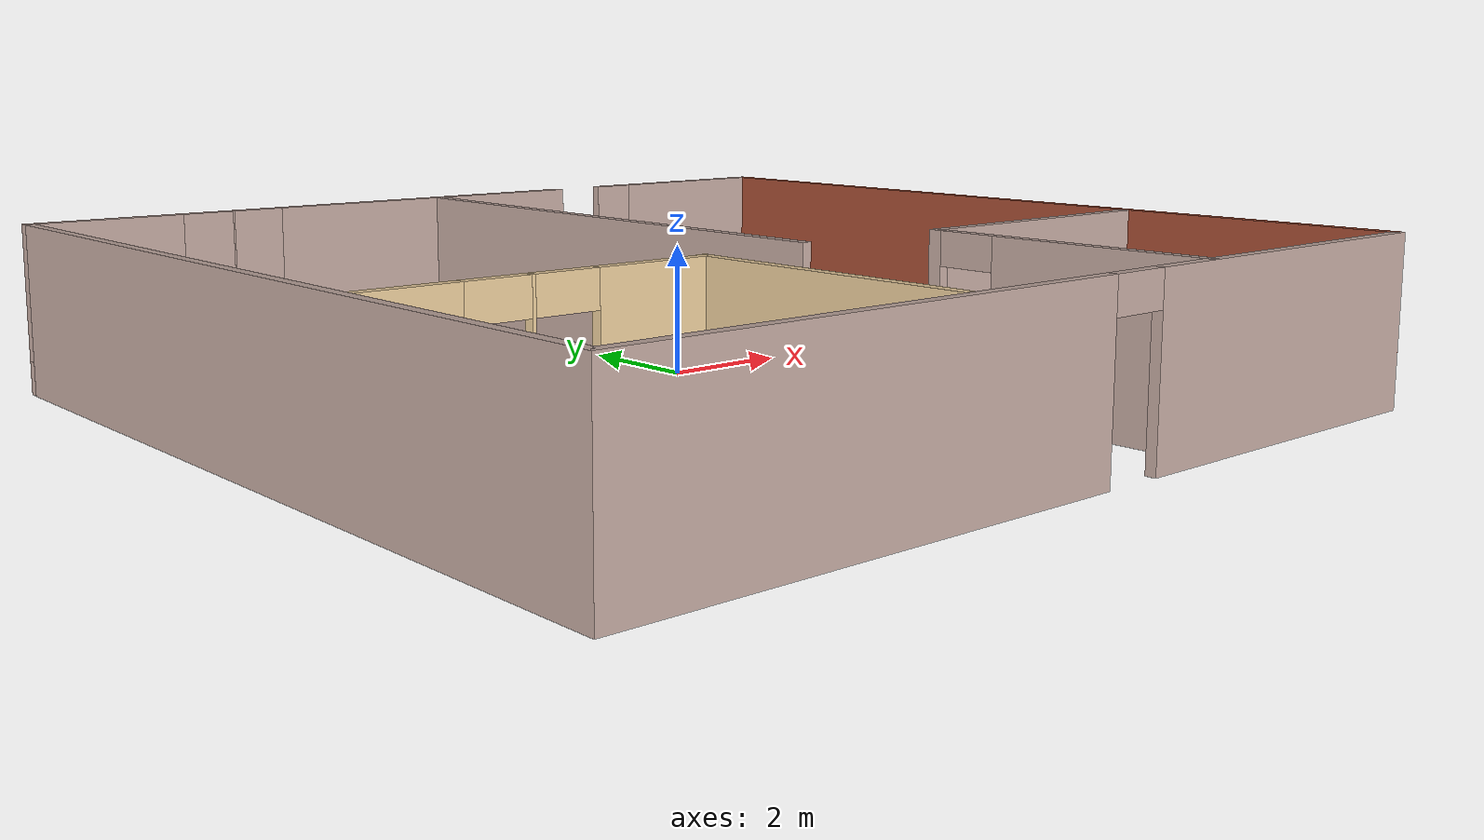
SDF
<?xml version='1.0'?>
<sdf version='1.6'>
  <model name='Apartment'>
    <pose frame=''>-1.18921 -1.85739 0 0 -0 0</pose>
    <link name='Wall_0'>
      <collision name='Wall_0_Collision'>
        <geometry>
          <box>
            <size>13.5 0.15 2.5</size>
          </box>
        </geometry>
        <pose frame=''>0 0 1.25 0 -0 0</pose>
      </collision>
      <visual name='Wall_0_Visual'>
        <pose frame=''>0 0 1.25 0 -0 0</pose>
        <geometry>
          <box>
            <size>13.5 0.15 2.5</size>
          </box>
        </geometry>
        <material>
          <script>
            <uri>file://media/materials/scripts/gazebo.material</uri>
            <name>Gazebo/Grey</name>
          </script>
          <ambient>0.760784 0.662745 0.627451 1</ambient>
        </material>
      </visual>
      <pose frame=''>-6.925 0 0 0 0 -1.5708</pose>
    </link>
    <link name='Wall_1'>
      <pose frame=''>0 -6.675 0 0 -0 0</pose>
      <visual name='Wall_1_Visual_0'>
        <pose frame=''>-3.31784 0 1.25 0 -0 0</pose>
        <geometry>
          <box>
            <size>7.36433 0.15 2.5</size>
          </box>
        </geometry>
        <material>
          <script>
            <uri>file://media/materials/scripts/gazebo.material</uri>
            <name>Gazebo/Grey</name>
          </script>
          <ambient>0.760784 0.662745 0.627451 1</ambient>
        </material>
      </visual>
      <collision name='Wall_1_Collision_0'>
        <geometry>
          <box>
            <size>7.36433 0.15 2.5</size>
          </box>
        </geometry>
        <pose frame=''>-3.31784 0 1.25 0 -0 0</pose>
      </collision>
      <visual name='Wall_1_Visual_1'>
        <pose frame=''>4.13216 0 1.25 0 -0 0</pose>
        <geometry>
          <box>
            <size>5.73567 0.15 2.5</size>
          </box>
        </geometry>
        <material>
          <script>
            <uri>file://media/materials/scripts/gazebo.material</uri>
            <name>Gazebo/Grey</name>
          </script>
          <ambient>0.760784 0.662745 0.627451 1</ambient>
        </material>
      </visual>
      <collision name='Wall_1_Collision_1'>
        <geometry>
          <box>
            <size>5.73567 0.15 2.5</size>
          </box>
        </geometry>
        <pose frame=''>4.13216 0 1.25 0 -0 0</pose>
      </collision>
      <visual name='Wall_1_Visual_2'>
        <pose frame=''>0.814328 0 2.25 0 -0 0</pose>
        <geometry>
          <box>
            <size>0.9 0.15 0.5</size>
          </box>
        </geometry>
        <material>
          <script>
            <uri>file://media/materials/scripts/gazebo.material</uri>
            <name>Gazebo/Grey</name>
          </script>
          <ambient>0.760784 0.662745 0.627451 1</ambient>
        </material>
      </visual>
      <collision name='Wall_1_Collision_2'>
        <geometry>
          <box>
            <size>0.9 0.15 0.5</size>
          </box>
        </geometry>
        <pose frame=''>0.814328 0 2.25 0 -0 0</pose>
      </collision>
    </link>
    <link name='Wall_10'>
      <pose frame=''>-4.3729 -2.44089 0 0 -0 0</pose>
      <visual name='Wall_10_Visual_0'>
        <pose frame=''>-1.80534 0 1.25 0 -0 0</pose>
        <geometry>
          <box>
            <size>1.33849 0.15 2.5</size>
          </box>
        </geometry>
        <material>
          <script>
            <uri>file://media/materials/scripts/gazebo.material</uri>
            <name>Gazebo/Grey</name>
          </script>
          <ambient>0.921569 0.807843 0.615686 1</ambient>
        </material>
      </visual>
      <collision name='Wall_10_Collision_0'>
        <geometry>
          <box>
            <size>1.33849 0.15 2.5</size>
          </box>
        </geometry>
        <pose frame=''>-1.80534 0 1.25 0 -0 0</pose>
      </collision>
      <visual name='Wall_10_Visual_1'>
        <pose frame=''>-0.211947 0 1.25 0 -0 0</pose>
        <geometry>
          <box>
            <size>0.048297 0.15 2.5</size>
          </box>
        </geometry>
        <material>
          <script>
            <uri>file://media/materials/scripts/gazebo.material</uri>
            <name>Gazebo/Grey</name>
          </script>
          <ambient>0.921569 0.807843 0.615686 1</ambient>
        </material>
      </visual>
      <collision name='Wall_10_Collision_1'>
        <geometry>
          <box>
            <size>0.048297 0.15 2.5</size>
          </box>
        </geometry>
        <pose frame=''>-0.211947 0 1.25 0 -0 0</pose>
      </collision>
      <visual name='Wall_10_Visual_2'>
        <pose frame=''>1.59339 0 1.25 0 -0 0</pose>
        <geometry>
          <box>
            <size>1.76239 0.15 2.5</size>
          </box>
        </geometry>
        <material>
          <script>
            <uri>file://media/materials/scripts/gazebo.material</uri>
            <name>Gazebo/Grey</name>
          </script>
          <ambient>0.921569 0.807843 0.615686 1</ambient>
        </material>
      </visual>
      <collision name='Wall_10_Collision_2'>
        <geometry>
          <box>
            <size>1.76239 0.15 2.5</size>
          </box>
        </geometry>
        <pose frame=''>1.59339 0 1.25 0 -0 0</pose>
      </collision>
      <visual name='Wall_10_Visual_3'>
        <pose frame=''>-0.686096 0 2.25 0 -0 0</pose>
        <geometry>
          <box>
            <size>0.9 0.15 0.5</size>
          </box>
        </geometry>
        <material>
          <script>
            <uri>file://media/materials/scripts/gazebo.material</uri>
            <name>Gazebo/Grey</name>
          </script>
          <ambient>0.921569 0.807843 0.615686 1</ambient>
        </material>
      </visual>
      <collision name='Wall_10_Collision_3'>
        <geometry>
          <box>
            <size>0.9 0.15 0.5</size>
          </box>
        </geometry>
        <pose frame=''>-0.686096 0 2.25 0 -0 0</pose>
      </collision>
      <visual name='Wall_10_Visual_4'>
        <pose frame=''>0.262201 0 2.25 0 -0 0</pose>
        <geometry>
          <box>
            <size>0.9 0.15 0.5</size>
          </box>
        </geometry>
        <material>
          <script>
            <uri>file://media/materials/scripts/gazebo.material</uri>
            <name>Gazebo/Grey</name>
          </script>
          <ambient>0.921569 0.807843 0.615686 1</ambient>
        </material>
      </visual>
      <collision name='Wall_10_Collision_4'>
        <geometry>
          <box>
            <size>0.9 0.15 0.5</size>
          </box>
        </geometry>
        <pose frame=''>0.262201 0 2.25 0 -0 0</pose>
      </collision>
    </link>
    <link name='Wall_11'>
      <collision name='Wall_11_Collision'>
        <geometry>
          <box>
            <size>4.25 0.15 2.5</size>
          </box>
        </geometry>
        <pose frame=''>0 0 1.25 0 -0 0</pose>
      </collision>
      <visual name='Wall_11_Visual'>
        <pose frame=''>0 0 1.25 0 -0 0</pose>
        <geometry>
          <box>
            <size>4.25 0.15 2.5</size>
          </box>
        </geometry>
        <material>
          <script>
            <uri>file://media/materials/scripts/gazebo.material</uri>
            <name>Gazebo/Grey</name>
          </script>
          <ambient>0.921569 0.807843 0.615686 1</ambient>
        </material>
      </visual>
      <pose frame=''>-1.97375 -4.4603 0 0 0 -1.5708</pose>
    </link>
    <link name='Wall_2'>
      <collision name='Wall_2_Collision'>
        <geometry>
          <box>
            <size>13.5 0.15 2.5</size>
          </box>
        </geometry>
        <pose frame=''>0 0 1.25 0 -0 0</pose>
      </collision>
      <visual name='Wall_2_Visual'>
        <pose frame=''>0 0 1.25 0 -0 0</pose>
        <geometry>
          <box>
            <size>13.5 0.15 2.5</size>
          </box>
        </geometry>
        <material>
          <script>
            <uri>file://media/materials/scripts/gazebo.material</uri>
            <name>Gazebo/Bricks</name>
          </script>
          <ambient>1 1 1 1</ambient>
        </material>
      </visual>
      <pose frame=''>6.925 0 0 0 -0 1.5708</pose>
    </link>
    <link name='Wall_3'>
      <pose frame=''>0 6.675 0 0 -0 3.14159</pose>
      <visual name='Wall_3_Visual_0'>
        <pose frame=''>-5.49902 0 1.25 0 -0 0</pose>
        <geometry>
          <box>
            <size>3.00196 0.15 2.5</size>
          </box>
        </geometry>
        <material>
          <script>
            <uri>file://media/materials/scripts/gazebo.material</uri>
            <name>Gazebo/Grey</name>
          </script>
          <ambient>0.760784 0.662745 0.627451 1</ambient>
        </material>
      </visual>
      <collision name='Wall_3_Collision_0'>
        <geometry>
          <box>
            <size>3.00196 0.15 2.5</size>
          </box>
        </geometry>
        <pose frame=''>-5.49902 0 1.25 0 -0 0</pose>
      </collision>
      <visual name='Wall_3_Visual_1'>
        <pose frame=''>1.50098 0 0.25 0 -0 0</pose>
        <geometry>
          <box>
            <size>10.998 0.15 0.5</size>
          </box>
        </geometry>
        <material>
          <script>
            <uri>file://media/materials/scripts/gazebo.material</uri>
            <name>Gazebo/Grey</name>
          </script>
          <ambient>0.760784 0.662745 0.627451 1</ambient>
        </material>
      </visual>
      <collision name='Wall_3_Collision_1'>
        <geometry>
          <box>
            <size>10.998 0.15 0.5</size>
          </box>
        </geometry>
        <pose frame=''>1.50098 0 0.25 0 -0 0</pose>
      </collision>
      <visual name='Wall_3_Visual_2'>
        <pose frame=''>0.25633 0 1.5 0 -0 0</pose>
        <geometry>
          <box>
            <size>5.50159 0.15 2</size>
          </box>
        </geometry>
        <material>
          <script>
            <uri>file://media/materials/scripts/gazebo.material</uri>
            <name>Gazebo/Grey</name>
          </script>
          <ambient>0.760784 0.662745 0.627451 1</ambient>
        </material>
      </visual>
      <collision name='Wall_3_Collision_2'>
        <geometry>
          <box>
            <size>5.50159 0.15 2</size>
          </box>
        </geometry>
        <pose frame=''>0.25633 0 1.5 0 -0 0</pose>
      </collision>
      <visual name='Wall_3_Visual_3'>
        <pose frame=''>3.82009 0 1.5 0 -0 0</pose>
        <geometry>
          <box>
            <size>0.025936 0.15 2</size>
          </box>
        </geometry>
        <material>
          <script>
            <uri>file://media/materials/scripts/gazebo.material</uri>
            <name>Gazebo/Grey</name>
          </script>
          <ambient>0.760784 0.662745 0.627451 1</ambient>
        </material>
      </visual>
      <collision name='Wall_3_Collision_3'>
        <geometry>
          <box>
            <size>0.025936 0.15 2</size>
          </box>
        </geometry>
        <pose frame=''>3.82009 0 1.5 0 -0 0</pose>
      </collision>
      <visual name='Wall_3_Visual_4'>
        <pose frame=''>5.81653 0 1.5 0 -0 0</pose>
        <geometry>
          <box>
            <size>2.36694 0.15 2</size>
          </box>
        </geometry>
        <material>
          <script>
            <uri>file://media/materials/scripts/gazebo.material</uri>
            <name>Gazebo/Grey</name>
          </script>
          <ambient>0.760784 0.662745 0.627451 1</ambient>
        </material>
      </visual>
      <collision name='Wall_3_Collision_4'>
        <geometry>
          <box>
            <size>2.36694 0.15 2</size>
          </box>
        </geometry>
        <pose frame=''>5.81653 0 1.5 0 -0 0</pose>
      </collision>
      <visual name='Wall_3_Visual_5'>
        <pose frame=''>-3.64625 0 1.9 0 -0 0</pose>
        <geometry>
          <box>
            <size>0.703575 0.15 1.2</size>
          </box>
        </geometry>
        <material>
          <script>
            <uri>file://media/materials/scripts/gazebo.material</uri>
            <name>Gazebo/Grey</name>
          </script>
          <ambient>0.760784 0.662745 0.627451 1</ambient>
        </material>
      </visual>
      <collision name='Wall_3_Collision_5'>
        <geometry>
          <box>
            <size>0.703575 0.15 1.2</size>
          </box>
        </geometry>
        <pose frame=''>-3.64625 0 1.9 0 -0 0</pose>
      </collision>
      <visual name='Wall_3_Visual_6'>
        <pose frame=''>3.40712 0 1.9 0 -0 0</pose>
        <geometry>
          <box>
            <size>0.8 0.15 1.2</size>
          </box>
        </geometry>
        <material>
          <script>
            <uri>file://media/materials/scripts/gazebo.material</uri>
            <name>Gazebo/Grey</name>
          </script>
          <ambient>0.760784 0.662745 0.627451 1</ambient>
        </material>
      </visual>
      <collision name='Wall_3_Collision_6'>
        <geometry>
          <box>
            <size>0.8 0.15 1.2</size>
          </box>
        </geometry>
        <pose frame=''>3.40712 0 1.9 0 -0 0</pose>
      </collision>
      <visual name='Wall_3_Visual_7'>
        <pose frame=''>4.23306 0 1.9 0 -0 0</pose>
        <geometry>
          <box>
            <size>0.8 0.15 1.2</size>
          </box>
        </geometry>
        <material>
          <script>
            <uri>file://media/materials/scripts/gazebo.material</uri>
            <name>Gazebo/Grey</name>
          </script>
          <ambient>0.760784 0.662745 0.627451 1</ambient>
        </material>
      </visual>
      <collision name='Wall_3_Collision_7'>
        <geometry>
          <box>
            <size>0.8 0.15 1.2</size>
          </box>
        </geometry>
        <pose frame=''>4.23306 0 1.9 0 -0 0</pose>
      </collision>
    </link>
    <link name='Wall_5'>
      <collision name='Wall_5_Collision'>
        <geometry>
          <box>
            <size>9 0.15 2.5</size>
          </box>
        </geometry>
        <pose frame=''>0 0 1.25 0 -0 0</pose>
      </collision>
      <visual name='Wall_5_Visual'>
        <pose frame=''>0 0 1.25 0 -0 0</pose>
        <geometry>
          <box>
            <size>9 0.15 2.5</size>
          </box>
        </geometry>
        <material>
          <script>
            <uri>file://media/materials/scripts/gazebo.material</uri>
            <name>Gazebo/Grey</name>
          </script>
          <ambient>0.760784 0.662745 0.627451 1</ambient>
        </material>
      </visual>
      <pose frame=''>-0.072789 2.25 0 0 0 -1.5708</pose>
    </link>
    <link name='Wall_7'>
      <pose frame=''>2.40502 -4.48734 0 0 -0 1.5708</pose>
      <visual name='Wall_7_Visual_0'>
        <pose frame=''>-0.556201 0 1.25 0 -0 0</pose>
        <geometry>
          <box>
            <size>3.3876 0.15 2.5</size>
          </box>
        </geometry>
        <material>
          <script>
            <uri>file://media/materials/scripts/gazebo.material</uri>
            <name>Gazebo/Grey</name>
          </script>
          <ambient>0.760784 0.662745 0.627451 1</ambient>
        </material>
      </visual>
      <collision name='Wall_7_Collision_0'>
        <geometry>
          <box>
            <size>3.3876 0.15 2.5</size>
          </box>
        </geometry>
        <pose frame=''>-0.556201 0 1.25 0 -0 0</pose>
      </collision>
      <visual name='Wall_7_Visual_1'>
        <pose frame=''>2.1438 0 1.25 0 -0 0</pose>
        <geometry>
          <box>
            <size>0.212402 0.15 2.5</size>
          </box>
        </geometry>
        <material>
          <script>
            <uri>file://media/materials/scripts/gazebo.material</uri>
            <name>Gazebo/Grey</name>
          </script>
          <ambient>0.760784 0.662745 0.627451 1</ambient>
        </material>
      </visual>
      <collision name='Wall_7_Collision_1'>
        <geometry>
          <box>
            <size>0.212402 0.15 2.5</size>
          </box>
        </geometry>
        <pose frame=''>2.1438 0 1.25 0 -0 0</pose>
      </collision>
      <visual name='Wall_7_Visual_2'>
        <pose frame=''>1.5876 0 2.25 0 -0 0</pose>
        <geometry>
          <box>
            <size>0.9 0.15 0.5</size>
          </box>
        </geometry>
        <material>
          <script>
            <uri>file://media/materials/scripts/gazebo.material</uri>
            <name>Gazebo/Grey</name>
          </script>
          <ambient>0.760784 0.662745 0.627451 1</ambient>
        </material>
      </visual>
      <collision name='Wall_7_Collision_2'>
        <geometry>
          <box>
            <size>0.9 0.15 0.5</size>
          </box>
        </geometry>
        <pose frame=''>1.5876 0 2.25 0 -0 0</pose>
      </collision>
    </link>
    <link name='Wall_8'>
      <collision name='Wall_8_Collision'>
        <geometry>
          <box>
            <size>4.5 0.15 2.5</size>
          </box>
        </geometry>
        <pose frame=''>0 0 1.25 0 -0 0</pose>
      </collision>
      <visual name='Wall_8_Visual'>
        <pose frame=''>0 0 1.25 0 -0 0</pose>
        <geometry>
          <box>
            <size>4.5 0.15 2.5</size>
          </box>
        </geometry>
        <material>
          <script>
            <uri>file://media/materials/scripts/gazebo.material</uri>
            <name>Gazebo/Grey</name>
          </script>
          <ambient>0.760784 0.662745 0.627451 1</ambient>
        </material>
      </visual>
      <pose frame=''>4.58002 -2.31234 0 0 -0 0</pose>
    </link>
    <static>1</static>
  </model>
</sdf>
